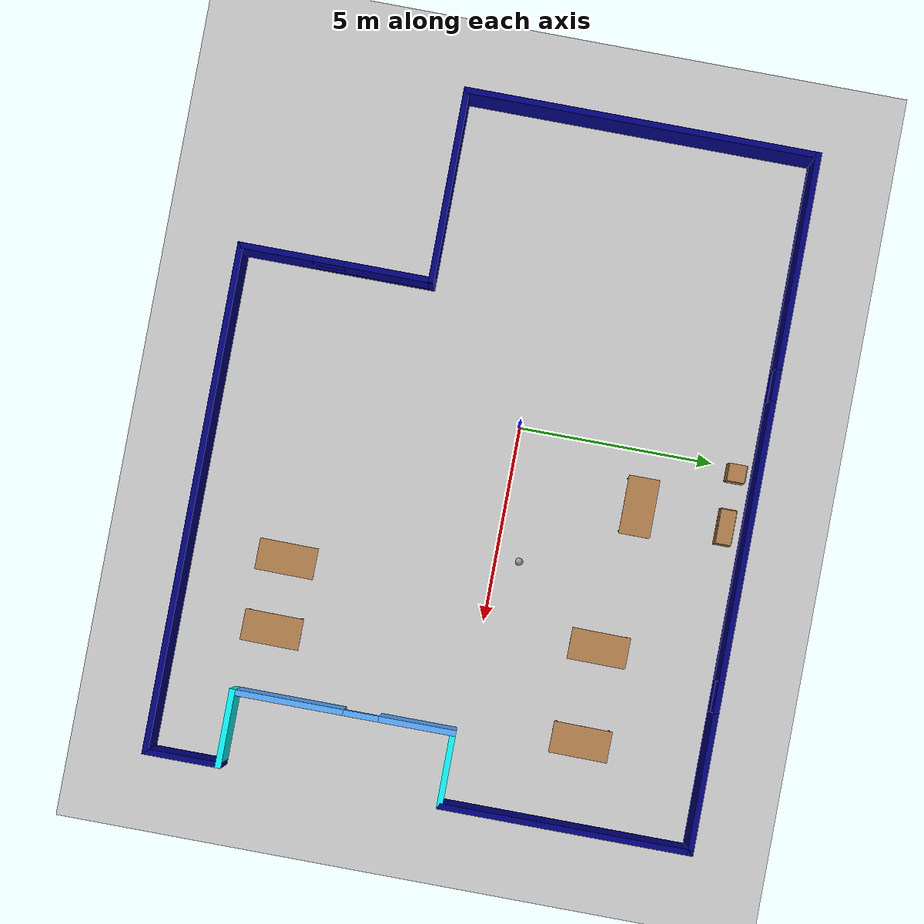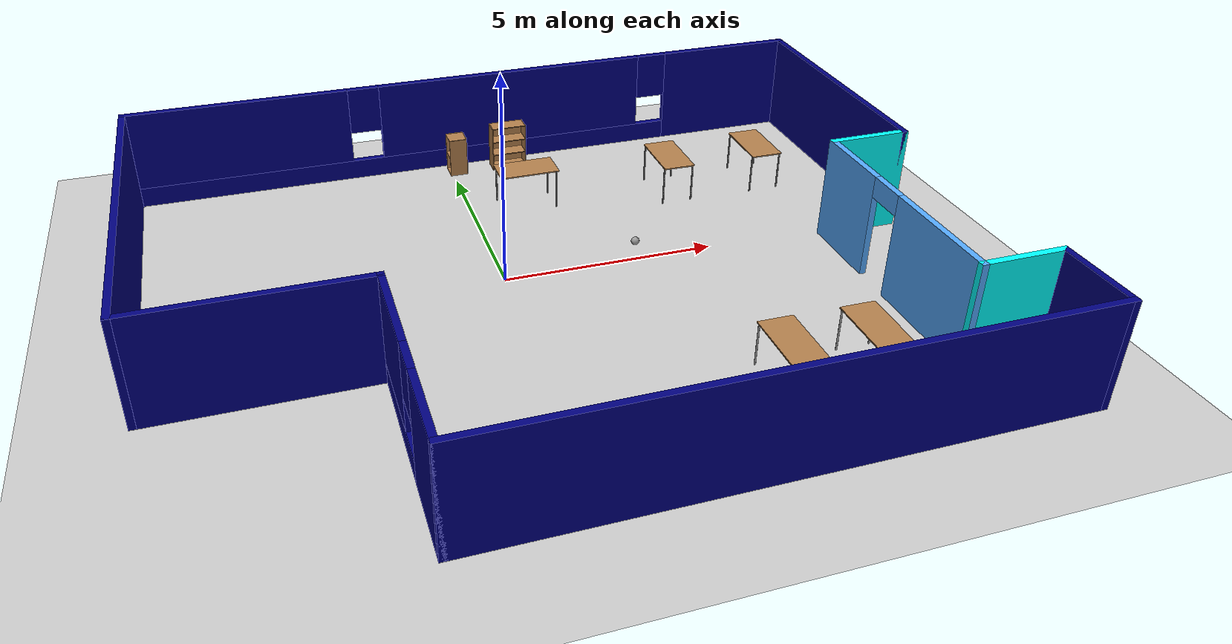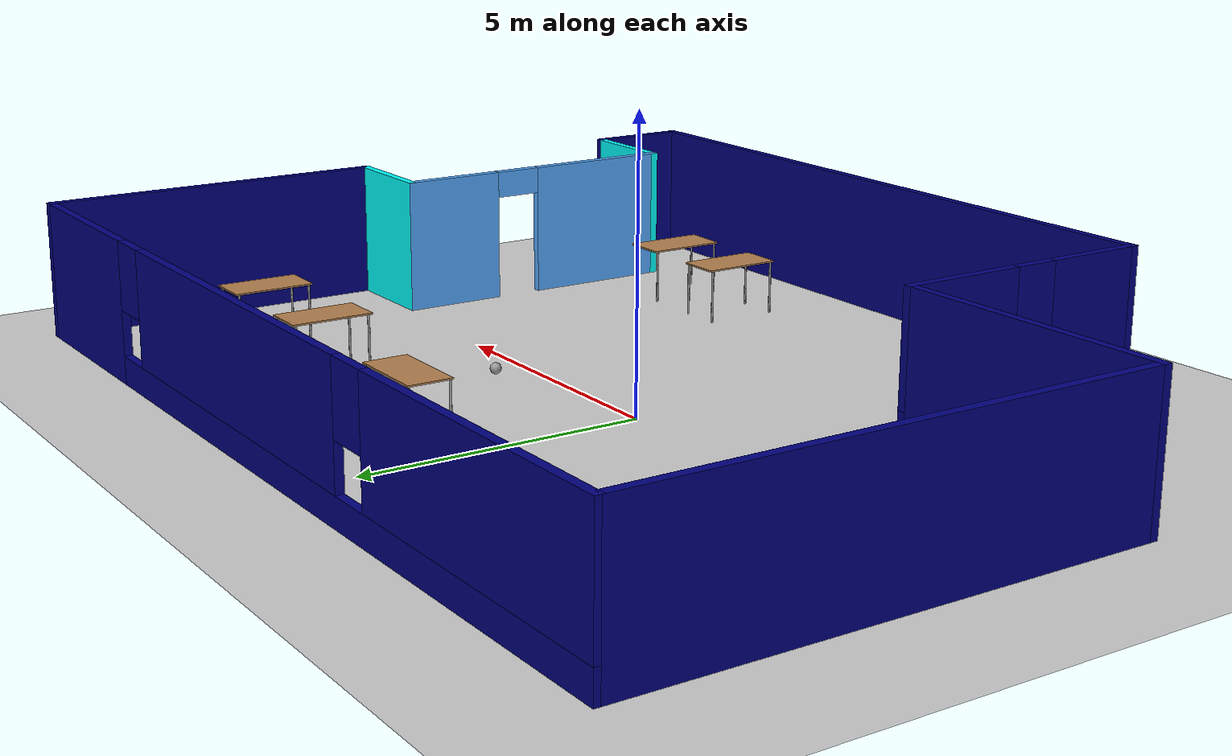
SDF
<sdf version="1.6">
 <world name="default">
  <model name="ground_plane">
   <static>1</static>
   <link name="link">
    <collision name="collision">
     <geometry><plane><normal>0 0 1</normal><size>100 100</size></plane></geometry>
     <surface>
      <contact><collide_bitmask>65535</collide_bitmask></contact>
      <friction><ode><mu>100</mu><mu2>50</mu2></ode></friction>
     </surface>
    </collision>
    <visual name="visual">
     <cast_shadows>0</cast_shadows>
     <geometry><plane><normal>0 0 1</normal><size>100 100</size></plane></geometry>
     <material>
      <script><uri>file://media/materials/scripts/gazebo.material</uri><name>Gazebo/Grey</name></script>
     </material>
    </visual>
   </link>
  </model>
  <model name="restaurant">
   <pose>0.87723 -0.79244 0 0 -0 0</pose>
   <link name="Wall_101">
    <collision name="Wall_101_Collision">
     <geometry><box><size>13 0.15 2.5</size></box></geometry>
     <pose>0 0 1.25 0 -0 0</pose>
    </collision>
    <visual name="Wall_101_Visual">
     <pose>0 0 1.25 0 -0 0</pose>
     <geometry><box><size>13 0.15 2.5</size></box></geometry>
     <material>
      <script><uri>file://media/materials/scripts/gazebo.material</uri><name>Gazebo/Grey</name></script>
      <ambient>0 0 0.498039 1</ambient>
     </material>
     <meta><layer>0</layer></meta>
    </visual>
    <pose>2.425 -6.9 0 0 -0 0</pose>
   </link>
   <link name="Wall_103">
    <collision name="Wall_103_Collision">
     <geometry><box><size>2 0.15 2.5</size></box></geometry>
     <pose>0 0 1.25 0 -0 0</pose>
    </collision>
    <visual name="Wall_103_Visual">
     <pose>0 0 1.25 0 -0 0</pose>
     <geometry><box><size>2 0.15 2.5</size></box></geometry>
     <material>
      <script><uri>file://media/materials/scripts/gazebo.material</uri><name>Gazebo/Grey</name></script>
      <ambient>0 0 0.498039 1</ambient>
     </material>
     <meta><layer>0</layer></meta>
    </visual>
    <pose>8.85 -5.975 0 0 -0 1.5708</pose>
   </link>
   <link name="Wall_104">
    <collision name="Wall_104_Collision">
     <geometry><box><size>2 0.15 2.5</size></box></geometry>
     <pose>0 0 1.25 0 -0 0</pose>
    </collision>
    <visual name="Wall_104_Visual">
     <pose>0 0 1.25 0 -0 0</pose>
     <geometry><box><size>2 0.15 2.5</size></box></geometry>
     <material>
      <script><uri>file://media/materials/scripts/gazebo.material</uri><name>Gazebo/Grey</name></script>
      <ambient>0 1 1 1</ambient>
     </material>
     <meta><layer>0</layer></meta>
    </visual>
    <pose>7.925 -5.05 0 0 -0 3.14159</pose>
   </link>
   <link name="Wall_105">
    <pose>7 -2.25 0 0 -0 1.5708</pose>
    <visual name="Wall_105_Visual_0">
     <pose>-1.4318 0 1.25 0 -0 0</pose>
     <geometry><box><size>2.88641 0.15 2.5</size></box></geometry>
     <material>
      <script><uri>file://media/materials/scripts/gazebo.material</uri><name>Gazebo/Grey</name></script>
      <ambient>0.333333 0.666667 1 1</ambient>
     </material>
     <meta><layer>0</layer></meta>
    </visual>
    <collision name="Wall_105_Collision_0">
     <geometry><box><size>2.88641 0.15 2.5</size></box></geometry>
     <pose>-1.4318 0 1.25 0 -0 0</pose>
    </collision>
    <visual name="Wall_105_Visual_1">
     <pose>1.8932 0 1.25 0 -0 0</pose>
     <geometry><box><size>1.96359 0.15 2.5</size></box></geometry>
     <material>
      <script><uri>file://media/materials/scripts/gazebo.material</uri><name>Gazebo/Grey</name></script>
      <ambient>0.333333 0.666667 1 1</ambient>
     </material>
     <meta><layer>0</layer></meta>
    </visual>
    <collision name="Wall_105_Collision_1">
     <geometry><box><size>1.96359 0.15 2.5</size></box></geometry>
     <pose>1.8932 0 1.25 0 -0 0</pose>
    </collision>
    <visual name="Wall_105_Visual_2">
     <pose>0.461409 0 2.25 0 -0 0</pose>
     <geometry><box><size>0.9 0.15 0.5</size></box></geometry>
     <material>
      <script><uri>file://media/materials/scripts/gazebo.material</uri><name>Gazebo/Grey</name></script>
      <ambient>0.333333 0.666667 1 1</ambient>
     </material>
     <meta><layer>0</layer></meta>
    </visual>
    <collision name="Wall_105_Collision_2">
     <geometry><box><size>0.9 0.15 0.5</size></box></geometry>
     <pose>0.461409 0 2.25 0 -0 0</pose>
    </collision>
   </link>
   <link name="Wall_106">
    <collision name="Wall_106_Collision">
     <geometry><box><size>2 0.15 2.5</size></box></geometry>
     <pose>0 0 1.25 0 -0 0</pose>
    </collision>
    <visual name="Wall_106_Visual">
     <pose>0 0 1.25 0 -0 0</pose>
     <geometry><box><size>2 0.15 2.5</size></box></geometry>
     <material>
      <script><uri>file://media/materials/scripts/gazebo.material</uri><name>Gazebo/Grey</name></script>
      <ambient>0 1 1 1</ambient>
     </material>
     <meta><layer>0</layer></meta>
    </visual>
    <pose>7.925 0.55 0 0 -0 0</pose>
   </link>
   <link name="Wall_107">
    <collision name="Wall_107_Collision">
     <geometry><box><size>6.5 0.15 2.5</size></box></geometry>
     <pose>0 0 1.25 0 -0 0</pose>
    </collision>
    <visual name="Wall_107_Visual">
     <pose>0 0 1.25 0 -0 0</pose>
     <geometry><box><size>6.5 0.15 2.5</size></box></geometry>
     <material>
      <script><uri>file://media/materials/scripts/gazebo.material</uri><name>Gazebo/Grey</name></script>
      <ambient>0 0 0.498039 1</ambient>
     </material>
     <meta><layer>0</layer></meta>
    </visual>
    <pose>8.85 3.725 0 0 -0 1.5708</pose>
   </link>
   <link name="Wall_109">
    <pose>0 6.9 0 0 -0 3.14159</pose>
    <visual name="Wall_109_Visual_0">
     <pose>-7.12995 0 1.25 0 -0 0</pose>
     <geometry><box><size>3.59009 0.15 2.5</size></box></geometry>
     <material>
      <script><uri>file://media/materials/scripts/gazebo.material</uri><name>Gazebo/Grey</name></script>
      <ambient>0 0 0.498039 1</ambient>
     </material>
     <meta><layer>0</layer></meta>
    </visual>
    <collision name="Wall_109_Collision_0">
     <geometry><box><size>3.59009 0.15 2.5</size></box></geometry>
     <pose>-7.12995 0 1.25 0 -0 0</pose>
    </collision>
    <visual name="Wall_109_Visual_1">
     <pose>1.79505 0 0.25 0 -0 0</pose>
     <geometry><box><size>14.2599 0.15 0.5</size></box></geometry>
     <material>
      <script><uri>file://media/materials/scripts/gazebo.material</uri><name>Gazebo/Grey</name></script>
      <ambient>0 0 0.498039 1</ambient>
     </material>
     <meta><layer>0</layer></meta>
    </visual>
    <collision name="Wall_109_Collision_1">
     <geometry><box><size>14.2599 0.15 0.5</size></box></geometry>
     <pose>1.79505 0 0.25 0 -0 0</pose>
    </collision>
    <visual name="Wall_109_Visual_2">
     <pose>-0.968805 0 1.5 0 -0 0</pose>
     <geometry><box><size>7.13221 0.15 2</size></box></geometry>
     <material>
      <script><uri>file://media/materials/scripts/gazebo.material</uri><name>Gazebo/Grey</name></script>
      <ambient>0 0 0.498039 1</ambient>
     </material>
     <meta><layer>0</layer></meta>
    </visual>
    <collision name="Wall_109_Collision_2">
     <geometry><box><size>7.13221 0.15 2</size></box></geometry>
     <pose>-0.968805 0 1.5 0 -0 0</pose>
    </collision>
    <visual name="Wall_109_Visual_3">
     <pose>6.16115 0 1.5 0 -0 0</pose>
     <geometry><box><size>5.5277 0.15 2</size></box></geometry>
     <material>
      <script><uri>file://media/materials/scripts/gazebo.material</uri><name>Gazebo/Grey</name></script>
      <ambient>0 0 0.498039 1</ambient>
     </material>
     <meta><layer>0</layer></meta>
    </visual>
    <collision name="Wall_109_Collision_3">
     <geometry><box><size>5.5277 0.15 2</size></box></geometry>
     <pose>6.16115 0 1.5 0 -0 0</pose>
    </collision>
    <visual name="Wall_109_Visual_4">
     <pose>-4.93491 0 1.9 0 -0 0</pose>
     <geometry><box><size>0.8 0.15 1.2</size></box></geometry>
     <material>
      <script><uri>file://media/materials/scripts/gazebo.material</uri><name>Gazebo/Grey</name></script>
      <ambient>0 0 0.498039 1</ambient>
     </material>
     <meta><layer>0</layer></meta>
    </visual>
    <collision name="Wall_109_Collision_4">
     <geometry><box><size>0.8 0.15 1.2</size></box></geometry>
     <pose>-4.93491 0 1.9 0 -0 0</pose>
    </collision>
    <visual name="Wall_109_Visual_5">
     <pose>2.9973 0 1.9 0 -0 0</pose>
     <geometry><box><size>0.8 0.15 1.2</size></box></geometry>
     <material>
      <script><uri>file://media/materials/scripts/gazebo.material</uri><name>Gazebo/Grey</name></script>
      <ambient>0 0 0.498039 1</ambient>
     </material>
     <meta><layer>0</layer></meta>
    </visual>
    <collision name="Wall_109_Collision_5">
     <geometry><box><size>0.8 0.15 1.2</size></box></geometry>
     <pose>2.9973 0 1.9 0 -0 0</pose>
    </collision>
   </link>
   <link name="Wall_93">
    <pose>-4 -4.475 0 0 -0 1.5708</pose>
    <visual name="Wall_93_Visual_0">
     <pose>-1.54548 0 1.25 0 -0 0</pose>
     <geometry><box><size>1.90904 0.15 2.5</size></box></geometry>
     <material>
      <script><uri>file://media/materials/scripts/gazebo.material</uri><name>Gazebo/Grey</name></script>
      <ambient>0 0 0.498039 1</ambient>
     </material>
     <meta><layer>0</layer></meta>
    </visual>
    <collision name="Wall_93_Collision_0">
     <geometry><box><size>1.90904 0.15 2.5</size></box></geometry>
     <pose>-1.54548 0 1.25 0 -0 0</pose>
    </collision>
    <visual name="Wall_93_Visual_1">
     <pose>0.954519 0 0.25 0 -0 0</pose>
     <geometry><box><size>3.09096 0.15 0.5</size></box></geometry>
     <material>
      <script><uri>file://media/materials/scripts/gazebo.material</uri><name>Gazebo/Grey</name></script>
      <ambient>0 0 0.498039 1</ambient>
     </material>
     <meta><layer>0</layer></meta>
    </visual>
    <collision name="Wall_93_Collision_1">
     <geometry><box><size>3.09096 0.15 0.5</size></box></geometry>
     <pose>0.954519 0 0.25 0 -0 0</pose>
    </collision>
    <visual name="Wall_93_Visual_2">
     <pose>1.35452 0 1.5 0 -0 0</pose>
     <geometry><box><size>2.29096 0.15 2</size></box></geometry>
     <material>
      <script><uri>file://media/materials/scripts/gazebo.material</uri><name>Gazebo/Grey</name></script>
      <ambient>0 0 0.498039 1</ambient>
     </material>
     <meta><layer>0</layer></meta>
    </visual>
    <collision name="Wall_93_Collision_2">
     <geometry><box><size>2.29096 0.15 2</size></box></geometry>
     <pose>1.35452 0 1.5 0 -0 0</pose>
    </collision>
    <visual name="Wall_93_Visual_3">
     <pose>-0.190961 0 1.9 0 -0 0</pose>
     <geometry><box><size>0.8 0.15 1.2</size></box></geometry>
     <material>
      <script><uri>file://media/materials/scripts/gazebo.material</uri><name>Gazebo/Grey</name></script>
      <ambient>0 0 0.498039 1</ambient>
     </material>
     <meta><layer>0</layer></meta>
    </visual>
    <collision name="Wall_93_Collision_3">
     <geometry><box><size>0.8 0.15 1.2</size></box></geometry>
     <pose>-0.190961 0 1.9 0 -0 0</pose>
    </collision>
   </link>
   <link name="Wall_95">
    <collision name="Wall_95_Collision">
     <geometry><box><size>5 0.15 2.5</size></box></geometry>
     <pose>0 0 1.25 0 -0 0</pose>
    </collision>
    <visual name="Wall_95_Visual">
     <pose>0 0 1.25 0 -0 0</pose>
     <geometry><box><size>5 0.15 2.5</size></box></geometry>
     <material>
      <script><uri>file://media/materials/scripts/gazebo.material</uri><name>Gazebo/Grey</name></script>
      <ambient>0 0 0.498039 1</ambient>
     </material>
     <meta><layer>0</layer></meta>
    </visual>
    <pose>-6.425 -2.05 0 0 -0 3.14159</pose>
   </link>
   <link name="Wall_96">
    <collision name="Wall_96_Collision">
     <geometry><box><size>9 0.15 2.5</size></box></geometry>
     <pose>0 0 1.25 0 -0 0</pose>
    </collision>
    <visual name="Wall_96_Visual">
     <pose>0 0 1.25 0 -0 0</pose>
     <geometry><box><size>9 0.15 2.5</size></box></geometry>
     <material>
      <script><uri>file://media/materials/scripts/gazebo.material</uri><name>Gazebo/Grey</name></script>
      <ambient>0 0 0.498039 1</ambient>
     </material>
     <meta><layer>0</layer></meta>
    </visual>
    <pose>-8.85 2.375 0 0 -0 1.5708</pose>
   </link>
   <static>1</static>
  </model>
  <model name="table_clone">
   <static>1</static>
   <link name="link">
    <collision name="surface">
     <pose>0 0 1 0 -0 0</pose>
     <geometry><box><size>1.5 0.8 0.03</size></box></geometry>
     <surface><friction><ode><mu>0.6</mu><mu2>0.6</mu2></ode></friction></surface>
    </collision>
    <visual name="visual1">
     <pose>0 0 1 0 -0 0</pose>
     <geometry><box><size>1.5 0.8 0.03</size></box></geometry>
     <material>
      <script><uri>file://media/materials/scripts/gazebo.material</uri><name>Gazebo/Wood</name></script>
     </material>
    </visual>
    <collision name="front_left_leg">
     <pose>0.68 0.38 0.5 0 -0 0</pose>
     <geometry><cylinder><radius>0.02</radius><length>1</length></cylinder></geometry>
    </collision>
    <visual name="front_left_leg">
     <pose>0.68 0.38 0.5 0 -0 0</pose>
     <geometry><cylinder><radius>0.02</radius><length>1</length></cylinder></geometry>
     <material>
      <script><uri>file://media/materials/scripts/gazebo.material</uri><name>Gazebo/Grey</name></script>
     </material>
    </visual>
    <collision name="front_right_leg">
     <pose>0.68 -0.38 0.5 0 -0 0</pose>
     <geometry><cylinder><radius>0.02</radius><length>1</length></cylinder></geometry>
    </collision>
    <visual name="front_right_leg">
     <pose>0.68 -0.38 0.5 0 -0 0</pose>
     <geometry><cylinder><radius>0.02</radius><length>1</length></cylinder></geometry>
     <material>
      <script><uri>file://media/materials/scripts/gazebo.material</uri><name>Gazebo/Grey</name></script>
     </material>
    </visual>
    <collision name="back_right_leg">
     <pose>-0.68 -0.38 0.5 0 -0 0</pose>
     <geometry><cylinder><radius>0.02</radius><length>1</length></cylinder></geometry>
    </collision>
    <visual name="back_right_leg">
     <pose>-0.68 -0.38 0.5 0 -0 0</pose>
     <geometry><cylinder><radius>0.02</radius><length>1</length></cylinder></geometry>
     <material>
      <script><uri>file://media/materials/scripts/gazebo.material</uri><name>Gazebo/Grey</name></script>
     </material>
    </visual>
    <collision name="back_left_leg">
     <pose>-0.68 0.38 0.5 0 -0 0</pose>
     <geometry><cylinder><radius>0.02</radius><length>1</length></cylinder></geometry>
    </collision>
    <visual name="back_left_leg">
     <pose>-0.68 0.38 0.5 0 -0 0</pose>
     <geometry><cylinder><radius>0.02</radius><length>1</length></cylinder></geometry>
     <material>
      <script><uri>file://media/materials/scripts/gazebo.material</uri><name>Gazebo/Grey</name></script>
     </material>
    </visual>
   </link>
   <pose>5.15402 2.98984 0 0 -0 1.5628</pose>
  </model>
  <model name="bookshelf">
   <static>1</static>
   <link name="link">
    <inertial><mass>1</mass></inertial>
    <collision name="back">
     <pose>0 0.005 0.6 0 -0 0</pose>
     <geometry><box><size>0.9 0.01 1.2</size></box></geometry>
    </collision>
    <visual name="visual1">
     <pose>0 0.005 0.6 0 -0 0</pose>
     <geometry><box><size>0.9 0.01 1.2</size></box></geometry>
     <material>
      <script><uri>file://media/materials/scripts/gazebo.material</uri><name>Gazebo/Wood</name></script>
     </material>
    </visual>
    <collision name="left_side">
     <pose>0.45 -0.195 0.6 0 -0 0</pose>
     <geometry><box><size>0.02 0.4 1.2</size></box></geometry>
    </collision>
    <visual name="visual2">
     <pose>0.45 -0.195 0.6 0 -0 0</pose>
     <geometry><box><size>0.02 0.4 1.2</size></box></geometry>
     <material>
      <script><uri>file://media/materials/scripts/gazebo.material</uri><name>Gazebo/Wood</name></script>
     </material>
    </visual>
    <collision name="right_side">
     <pose>-0.45 -0.195 0.6 0 -0 0</pose>
     <geometry><box><size>0.02 0.4 1.2</size></box></geometry>
    </collision>
    <visual name="visual3">
     <pose>-0.45 -0.195 0.6 0 -0 0</pose>
     <geometry><box><size>0.02 0.4 1.2</size></box></geometry>
     <material>
      <script><uri>file://media/materials/scripts/gazebo.material</uri><name>Gazebo/Wood</name></script>
     </material>
    </visual>
    <collision name="bottom">
     <pose>0 -0.195 0.03 0 -0 0</pose>
     <geometry><box><size>0.88 0.4 0.06</size></box></geometry>
    </collision>
    <visual name="visual4">
     <pose>0 -0.195 0.03 0 -0 0</pose>
     <geometry><box><size>0.88 0.4 0.06</size></box></geometry>
     <material>
      <script><uri>file://media/materials/scripts/gazebo.material</uri><name>Gazebo/Wood</name></script>
     </material>
    </visual>
    <collision name="top">
     <pose>0 -0.195 1.19 0 -0 0</pose>
     <geometry><box><size>0.88 0.4 0.02</size></box></geometry>
    </collision>
    <visual name="visual5">
     <pose>0 -0.195 1.19 0 -0 0</pose>
     <geometry><box><size>0.88 0.4 0.02</size></box></geometry>
     <material>
      <script><uri>file://media/materials/scripts/gazebo.material</uri><name>Gazebo/Wood</name></script>
     </material>
    </visual>
    <collision name="low_shelf">
     <pose>0 -0.195 0.43 0 -0 0</pose>
     <geometry><box><size>0.88 0.4 0.02</size></box></geometry>
    </collision>
    <visual name="visual6">
     <pose>0 -0.195 0.43 0 -0 0</pose>
     <geometry><box><size>0.88 0.4 0.02</size></box></geometry>
     <material>
      <script><uri>file://media/materials/scripts/gazebo.material</uri><name>Gazebo/Wood</name></script>
     </material>
    </visual>
    <collision name="high_shelf">
     <pose>0 -0.195 0.8 0 -0 0</pose>
     <geometry><box><size>0.88 0.4 0.02</size></box></geometry>
    </collision>
    <visual name="visual7">
     <pose>0 -0.195 0.8 0 -0 0</pose>
     <geometry><box><size>0.88 0.4 0.02</size></box></geometry>
     <material>
      <script><uri>file://media/materials/scripts/gazebo.material</uri><name>Gazebo/Wood</name></script>
     </material>
    </visual>
   </link>
   <pose>1.5578 5.78555 0 0 -0 0</pose>
  </model>
  <model name="cabinet_0">
   <static>1</static>
   <link name="cabinet_bottom_plate">
    <inertial>
     <pose>0 0 -1 0 -0 0</pose>
     <inertia><ixx>2.05</ixx><ixy>0</ixy><ixz>0</ixz><iyy>2.05</iyy><iyz>0</iyz><izz>2.05</izz></inertia>
     <mass>25</mass>
    </inertial>
    <collision name="cabinet_bottom_plate_geom">
     <pose>0 0 0.01 0 -0 0</pose>
     <geometry><box><size>0.45 0.45 0.02</size></box></geometry>
    </collision>
    <visual name="cabinet_bottom_plate_geom_visual">
     <pose>0 0 0.01 0 -0 0</pose>
     <geometry><box><size>0.45 0.45 0.02</size></box></geometry>
     <material>
      <script><uri>file://media/materials/scripts/gazebo.material</uri><name>Gazebo/Wood</name></script>
     </material>
    </visual>
    <collision name="cabinet_bottom_plate_geom_cabinet_back_plate">
     <pose>0.235 0 0.51 0 -0 0</pose>
     <geometry><box><size>0.02 0.45 1.02</size></box></geometry>
    </collision>
    <visual name="cabinet_bottom_plate_geom_cabinet_back_plate_visual">
     <pose>0.235 0 0.51 0 -0 0</pose>
     <geometry><box><size>0.02 0.45 1.02</size></box></geometry>
     <material>
      <script><uri>file://media/materials/scripts/gazebo.material</uri><name>Gazebo/Wood</name></script>
     </material>
    </visual>
    <collision name="cabinet_bottom_plate_geom_cabinet_left_plate">
     <pose>0 0.235 0.51 0 -0 0</pose>
     <geometry><box><size>0.45 0.02 1.02</size></box></geometry>
    </collision>
    <visual name="cabinet_bottom_plate_geom_cabinet_left_plate_visual">
     <pose>0 0.235 0.51 0 -0 0</pose>
     <geometry><box><size>0.45 0.02 1.02</size></box></geometry>
     <material>
      <script><uri>file://media/materials/scripts/gazebo.material</uri><name>Gazebo/Wood</name></script>
     </material>
    </visual>
    <collision name="cabinet_bottom_plate_geom_cabinet_middle_plate">
     <pose>0 0 0.51 0 -0 0</pose>
     <geometry><box><size>0.45 0.45 0.02</size></box></geometry>
    </collision>
    <visual name="cabinet_bottom_plate_geom_cabinet_middle_plate_visual">
     <pose>0 0 0.51 0 -0 0</pose>
     <geometry><box><size>0.45 0.45 0.02</size></box></geometry>
     <material>
      <script><uri>file://media/materials/scripts/gazebo.material</uri><name>Gazebo/Wood</name></script>
     </material>
    </visual>
    <collision name="cabinet_bottom_plate_geom_cabinet_right_plate">
     <pose>0 -0.235 0.51 0 -0 0</pose>
     <geometry><box><size>0.45 0.02 1.02</size></box></geometry>
    </collision>
    <visual name="cabinet_bottom_plate_geom_cabinet_right_plate_visual">
     <pose>0 -0.235 0.51 0 -0 0</pose>
     <geometry><box><size>0.45 0.02 1.02</size></box></geometry>
     <material>
      <script><uri>file://media/materials/scripts/gazebo.material</uri><name>Gazebo/Wood</name></script>
     </material>
    </visual>
    <collision name="cabinet_bottom_plate_geom_cabinet_top_plate">
     <pose>0 0 1.01 0 -0 0</pose>
     <geometry><box><size>0.45 0.45 0.02</size></box></geometry>
    </collision>
    <visual name="cabinet_bottom_plate_geom_cabinet_top_plate_visual">
     <pose>0 0 1.01 0 -0 0</pose>
     <geometry><box><size>0.45 0.45 0.02</size></box></geometry>
     <material>
      <script><uri>file://media/materials/scripts/gazebo.material</uri><name>Gazebo/Wood</name></script>
     </material>
    </visual>
   </link>
   <pose>0.158144 5.62484 0 0 -0 0</pose>
  </model>
  <model name="table_clone_clone">
   <static>1</static>
   <link name="link">
    <collision name="surface">
     <pose>0 0 1 0 -0 0</pose>
     <geometry><box><size>1.5 0.8 0.03</size></box></geometry>
     <surface><friction><ode><mu>0.6</mu><mu2>0.6</mu2></ode></friction></surface>
    </collision>
    <visual name="visual1">
     <pose>0 0 1 0 -0 0</pose>
     <geometry><box><size>1.5 0.8 0.03</size></box></geometry>
     <material>
      <script><uri>file://media/materials/scripts/gazebo.material</uri><name>Gazebo/Wood</name></script>
     </material>
    </visual>
    <collision name="front_left_leg">
     <pose>0.68 0.38 0.5 0 -0 0</pose>
     <geometry><cylinder><radius>0.02</radius><length>1</length></cylinder></geometry>
    </collision>
    <visual name="front_left_leg">
     <pose>0.68 0.38 0.5 0 -0 0</pose>
     <geometry><cylinder><radius>0.02</radius><length>1</length></cylinder></geometry>
     <material>
      <script><uri>file://media/materials/scripts/gazebo.material</uri><name>Gazebo/Grey</name></script>
     </material>
    </visual>
    <collision name="front_right_leg">
     <pose>0.68 -0.38 0.5 0 -0 0</pose>
     <geometry><cylinder><radius>0.02</radius><length>1</length></cylinder></geometry>
    </collision>
    <visual name="front_right_leg">
     <pose>0.68 -0.38 0.5 0 -0 0</pose>
     <geometry><cylinder><radius>0.02</radius><length>1</length></cylinder></geometry>
     <material>
      <script><uri>file://media/materials/scripts/gazebo.material</uri><name>Gazebo/Grey</name></script>
     </material>
    </visual>
    <collision name="back_right_leg">
     <pose>-0.68 -0.38 0.5 0 -0 0</pose>
     <geometry><cylinder><radius>0.02</radius><length>1</length></cylinder></geometry>
    </collision>
    <visual name="back_right_leg">
     <pose>-0.68 -0.38 0.5 0 -0 0</pose>
     <geometry><cylinder><radius>0.02</radius><length>1</length></cylinder></geometry>
     <material>
      <script><uri>file://media/materials/scripts/gazebo.material</uri><name>Gazebo/Grey</name></script>
     </material>
    </visual>
    <collision name="back_left_leg">
     <pose>-0.68 0.38 0.5 0 -0 0</pose>
     <geometry><cylinder><radius>0.02</radius><length>1</length></cylinder></geometry>
    </collision>
    <visual name="back_left_leg">
     <pose>-0.68 0.38 0.5 0 -0 0</pose>
     <geometry><cylinder><radius>0.02</radius><length>1</length></cylinder></geometry>
     <material>
      <script><uri>file://media/materials/scripts/gazebo.material</uri><name>Gazebo/Grey</name></script>
     </material>
    </visual>
   </link>
   <pose>1.44609 3.34706 0 0 -0 0</pose>
  </model>
  <model name="table_clone_clone_1">
   <static>1</static>
   <link name="link">
    <collision name="surface">
     <pose>0 0 1 0 -0 0</pose>
     <geometry><box><size>1.5 0.8 0.03</size></box></geometry>
     <surface><friction><ode><mu>0.6</mu><mu2>0.6</mu2></ode></friction></surface>
    </collision>
    <visual name="visual1">
     <pose>0 0 1 0 -0 0</pose>
     <geometry><box><size>1.5 0.8 0.03</size></box></geometry>
     <material>
      <script><uri>file://media/materials/scripts/gazebo.material</uri><name>Gazebo/Wood</name></script>
     </material>
    </visual>
    <collision name="front_left_leg">
     <pose>0.68 0.38 0.5 0 -0 0</pose>
     <geometry><cylinder><radius>0.02</radius><length>1</length></cylinder></geometry>
    </collision>
    <visual name="front_left_leg">
     <pose>0.68 0.38 0.5 0 -0 0</pose>
     <geometry><cylinder><radius>0.02</radius><length>1</length></cylinder></geometry>
     <material>
      <script><uri>file://media/materials/scripts/gazebo.material</uri><name>Gazebo/Grey</name></script>
     </material>
    </visual>
    <collision name="front_right_leg">
     <pose>0.68 -0.38 0.5 0 -0 0</pose>
     <geometry><cylinder><radius>0.02</radius><length>1</length></cylinder></geometry>
    </collision>
    <visual name="front_right_leg">
     <pose>0.68 -0.38 0.5 0 -0 0</pose>
     <geometry><cylinder><radius>0.02</radius><length>1</length></cylinder></geometry>
     <material>
      <script><uri>file://media/materials/scripts/gazebo.material</uri><name>Gazebo/Grey</name></script>
     </material>
    </visual>
    <collision name="back_right_leg">
     <pose>-0.68 -0.38 0.5 0 -0 0</pose>
     <geometry><cylinder><radius>0.02</radius><length>1</length></cylinder></geometry>
    </collision>
    <visual name="back_right_leg">
     <pose>-0.68 -0.38 0.5 0 -0 0</pose>
     <geometry><cylinder><radius>0.02</radius><length>1</length></cylinder></geometry>
     <material>
      <script><uri>file://media/materials/scripts/gazebo.material</uri><name>Gazebo/Grey</name></script>
     </material>
    </visual>
    <collision name="back_left_leg">
     <pose>-0.68 0.38 0.5 0 -0 0</pose>
     <geometry><cylinder><radius>0.02</radius><length>1</length></cylinder></geometry>
    </collision>
    <visual name="back_left_leg">
     <pose>-0.68 0.38 0.5 0 -0 0</pose>
     <geometry><cylinder><radius>0.02</radius><length>1</length></cylinder></geometry>
     <material>
      <script><uri>file://media/materials/scripts/gazebo.material</uri><name>Gazebo/Grey</name></script>
     </material>
    </visual>
   </link>
   <pose>4.37108 -5.19089 0 0 -0 1.5628</pose>
  </model>
  <model name="ball">
   <link name="link_0">
    <pose>0 0 0.1 0 -0 0</pose>
    <inertial>
     <mass>1</mass>
     <inertia><ixx>0.1</ixx><ixy>0</ixy><ixz>0</ixz><iyy>0.1</iyy><iyz>0</iyz><izz>0.1</izz></inertia>
    </inertial>
    <visual name="visual">
     <geometry><sphere><radius>0.1</radius></sphere></geometry>
     <material>
      <lighting>1</lighting>
      <script><uri>file://media/materials/scripts/gazebo.material</uri><name>Gazebo/Grey</name></script>
      <shader type="pixel"><normal_map>__default__</normal_map></shader>
      <ambient>1 1 1 1</ambient>
      <diffuse>1 1 1 1</diffuse>
      <specular>1 1 1 1</specular>
      <emissive>1 1 1 1</emissive>
     </material>
    </visual>
    <collision name="collision">
     <geometry><sphere><radius>0.1</radius></sphere></geometry>
     <surface>
      <friction>
       <ode><mu>1</mu><mu2>1</mu2><fdir1>0 0 0</fdir1><slip1>0</slip1><slip2>0</slip2></ode>
       <torsional>
        <coefficient>1</coefficient>
        <patch_radius>0</patch_radius>
        <surface_radius>0</surface_radius>
        <use_patch_radius>1</use_patch_radius>
        <ode><slip>0</slip></ode>
       </torsional>
      </friction>
      <bounce><restitution_coefficient>0</restitution_coefficient><threshold>1e+06</threshold></bounce>
      <contact>
       <collide_without_contact>0</collide_without_contact>
       <collide_without_contact_bitmask>1</collide_without_contact_bitmask>
       <collide_bitmask>1</collide_bitmask>
       <ode>
        <soft_cfm>0</soft_cfm>
        <soft_erp>0.2</soft_erp>
        <kp>1e+13</kp>
        <kd>1</kd>
        <max_vel>0.01</max_vel>
        <min_depth>0</min_depth>
       </ode>
       <bullet>
        <split_impulse>1</split_impulse>
        <split_impulse_penetration_threshold>-0.01</split_impulse_penetration_threshold>
        <soft_cfm>0</soft_cfm>
        <soft_erp>0.2</soft_erp>
        <kp>1e+13</kp>
        <kd>1</kd>
       </bullet>
      </contact>
     </surface>
    </collision>
   </link>
   <static>0</static>
   <pose>3.36429 0.613765 0 0 -0 0</pose>
  </model>
  <model name="table_clone_clone_2">
   <static>1</static>
   <link name="link">
    <collision name="surface">
     <pose>0 0 1 0 -0 0</pose>
     <geometry><box><size>1.5 0.8 0.03</size></box></geometry>
     <surface><friction><ode><mu>0.6</mu><mu2>0.6</mu2></ode></friction></surface>
    </collision>
    <visual name="visual1">
     <pose>0 0 1 0 -0 0</pose>
     <geometry><box><size>1.5 0.8 0.03</size></box></geometry>
     <material>
      <script><uri>file://media/materials/scripts/gazebo.material</uri><name>Gazebo/Wood</name></script>
     </material>
    </visual>
    <collision name="front_left_leg">
     <pose>0.68 0.38 0.5 0 -0 0</pose>
     <geometry><cylinder><radius>0.02</radius><length>1</length></cylinder></geometry>
    </collision>
    <visual name="front_left_leg">
     <pose>0.68 0.38 0.5 0 -0 0</pose>
     <geometry><cylinder><radius>0.02</radius><length>1</length></cylinder></geometry>
     <material>
      <script><uri>file://media/materials/scripts/gazebo.material</uri><name>Gazebo/Grey</name></script>
     </material>
    </visual>
    <collision name="front_right_leg">
     <pose>0.68 -0.38 0.5 0 -0 0</pose>
     <geometry><cylinder><radius>0.02</radius><length>1</length></cylinder></geometry>
    </collision>
    <visual name="front_right_leg">
     <pose>0.68 -0.38 0.5 0 -0 0</pose>
     <geometry><cylinder><radius>0.02</radius><length>1</length></cylinder></geometry>
     <material>
      <script><uri>file://media/materials/scripts/gazebo.material</uri><name>Gazebo/Grey</name></script>
     </material>
    </visual>
    <collision name="back_right_leg">
     <pose>-0.68 -0.38 0.5 0 -0 0</pose>
     <geometry><cylinder><radius>0.02</radius><length>1</length></cylinder></geometry>
    </collision>
    <visual name="back_right_leg">
     <pose>-0.68 -0.38 0.5 0 -0 0</pose>
     <geometry><cylinder><radius>0.02</radius><length>1</length></cylinder></geometry>
     <material>
      <script><uri>file://media/materials/scripts/gazebo.material</uri><name>Gazebo/Grey</name></script>
     </material>
    </visual>
    <collision name="back_left_leg">
     <pose>-0.68 0.38 0.5 0 -0 0</pose>
     <geometry><cylinder><radius>0.02</radius><length>1</length></cylinder></geometry>
    </collision>
    <visual name="back_left_leg">
     <pose>-0.68 0.38 0.5 0 -0 0</pose>
     <geometry><cylinder><radius>0.02</radius><length>1</length></cylinder></geometry>
     <material>
      <script><uri>file://media/materials/scripts/gazebo.material</uri><name>Gazebo/Grey</name></script>
     </material>
    </visual>
   </link>
   <pose>7.56421 2.96353 0 0 -0 1.5628</pose>
  </model>
  <model name="table_clone_clone_3">
   <static>1</static>
   <link name="link">
    <collision name="surface">
     <pose>0 0 1 0 -0 0</pose>
     <geometry><box><size>1.5 0.8 0.03</size></box></geometry>
     <surface><friction><ode><mu>0.6</mu><mu2>0.6</mu2></ode></friction></surface>
    </collision>
    <visual name="visual1">
     <pose>0 0 1 0 -0 0</pose>
     <geometry><box><size>1.5 0.8 0.03</size></box></geometry>
     <material>
      <script><uri>file://media/materials/scripts/gazebo.material</uri><name>Gazebo/Wood</name></script>
     </material>
    </visual>
    <collision name="front_left_leg">
     <pose>0.68 0.38 0.5 0 -0 0</pose>
     <geometry><cylinder><radius>0.02</radius><length>1</length></cylinder></geometry>
    </collision>
    <visual name="front_left_leg">
     <pose>0.68 0.38 0.5 0 -0 0</pose>
     <geometry><cylinder><radius>0.02</radius><length>1</length></cylinder></geometry>
     <material>
      <script><uri>file://media/materials/scripts/gazebo.material</uri><name>Gazebo/Grey</name></script>
     </material>
    </visual>
    <collision name="front_right_leg">
     <pose>0.68 -0.38 0.5 0 -0 0</pose>
     <geometry><cylinder><radius>0.02</radius><length>1</length></cylinder></geometry>
    </collision>
    <visual name="front_right_leg">
     <pose>0.68 -0.38 0.5 0 -0 0</pose>
     <geometry><cylinder><radius>0.02</radius><length>1</length></cylinder></geometry>
     <material>
      <script><uri>file://media/materials/scripts/gazebo.material</uri><name>Gazebo/Grey</name></script>
     </material>
    </visual>
    <collision name="back_right_leg">
     <pose>-0.68 -0.38 0.5 0 -0 0</pose>
     <geometry><cylinder><radius>0.02</radius><length>1</length></cylinder></geometry>
    </collision>
    <visual name="back_right_leg">
     <pose>-0.68 -0.38 0.5 0 -0 0</pose>
     <geometry><cylinder><radius>0.02</radius><length>1</length></cylinder></geometry>
     <material>
      <script><uri>file://media/materials/scripts/gazebo.material</uri><name>Gazebo/Grey</name></script>
     </material>
    </visual>
    <collision name="back_left_leg">
     <pose>-0.68 0.38 0.5 0 -0 0</pose>
     <geometry><cylinder><radius>0.02</radius><length>1</length></cylinder></geometry>
    </collision>
    <visual name="back_left_leg">
     <pose>-0.68 0.38 0.5 0 -0 0</pose>
     <geometry><cylinder><radius>0.02</radius><length>1</length></cylinder></geometry>
     <material>
      <script><uri>file://media/materials/scripts/gazebo.material</uri><name>Gazebo/Grey</name></script>
     </material>
    </visual>
   </link>
   <pose>6.19662 -5.22748 0 0 -0 1.5628</pose>
  </model>
 </world>
</sdf>
